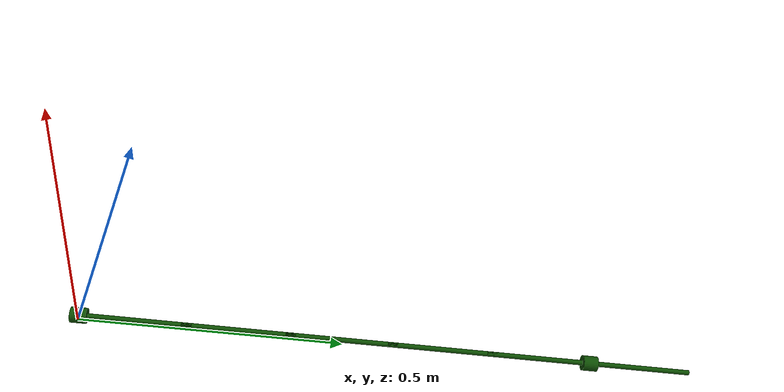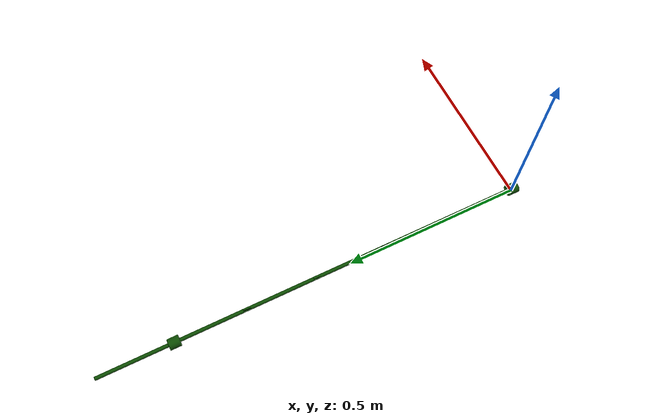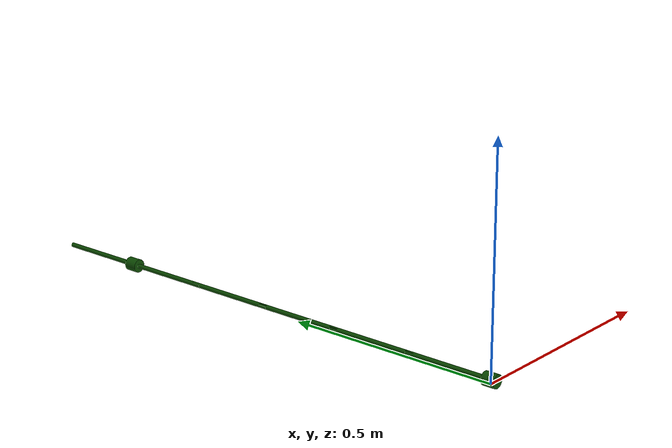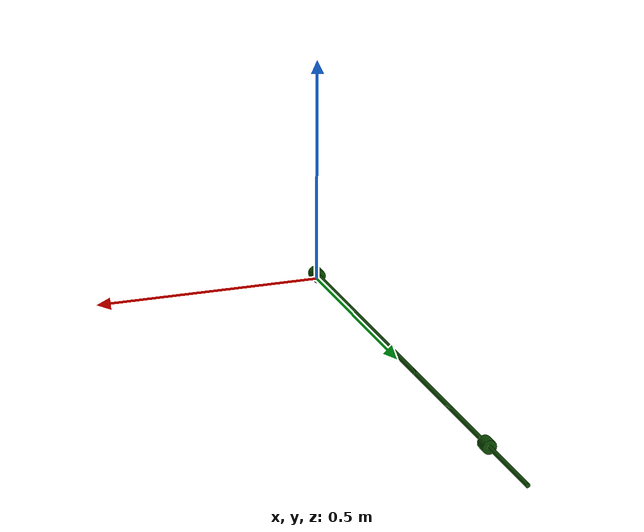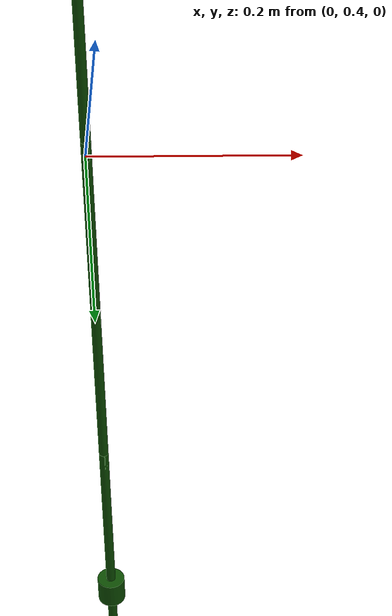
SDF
<?xml version='1.0'?>
<sdf version='1.6'>
  <model name="compliant_cord.sdf">

    <link name='l1'>
      <pose frame=''>0 0 0.01 -1.570796 0 0</pose>
      <collision name='collision'>
        <pose frame=''>0 0 0.1 0 0 0</pose>
        <geometry>
          <cylinder>
            <length>0.22</length>
            <radius>0.005</radius>
          </cylinder>
        </geometry>
        <surface>
          <friction>
            <ode>
              <mu>0.5</mu>
              <mu2>0.5</mu2>
            </ode>
          </friction>
        </surface>
      </collision>

      <visual name='visual'>
        <pose frame=''>0 0 0.1 0 0 0</pose>
        <geometry>
          <cylinder>
            <length>0.22</length>
            <radius>0.005</radius>
          </cylinder>
        </geometry>
        <material>
          <diffuse>0.05 0.3 0.01</diffuse>
        </material>
      </visual>
      <visual name='end_visual'>
        <pose frame=''>0 0 0 0 0 0</pose>
        <geometry>
          <cylinder>
            <length>0.03</length>
            <radius>0.015</radius>
          </cylinder>
        </geometry>
        <material>
          <diffuse>0.05 0.3 0.01</diffuse>
        </material>
      </visual>

      <inertial>
        <pose frame=''>0 0 0.1 0 0 0</pose>
        <mass>0.01</mass>
        <inertia>
          <ixx>4e-4</ixx>
          <ixy>0</ixy>
          <ixz>0</ixz>
          <iyy>4e-4</iyy>
          <iyz>0</iyz>
          <izz>1e-6</izz>
        </inertia>
      </inertial>
    </link>

    <joint name='j0' type='universal'>
      <parent>world</parent>
      <child>l1</child>
      <pose>0 0 0 0 0 0</pose>
      <axis>
        <xyz>0 1 0</xyz>
        <dynamics>
          <damping>0.005</damping>
          <spring_reference>0</spring_reference>
          <spring_stiffness>0.01</spring_stiffness>
        </dynamics>
      </axis>
      <axis2>
        <xyz>1 0 0</xyz>
        <dynamics>
          <damping>0.005</damping>
          <spring_reference>0</spring_reference>
          <spring_stiffness>0.01</spring_stiffness>
        </dynamics>
      </axis2>
    </joint>

    <link name='l2'>
      <pose frame=''>0 0.2 0.01 -1.570796 0 0</pose>
      <collision name='collision'>
        <pose frame=''>0 0 0.1 0 0 0</pose>
        <geometry>
          <cylinder>
            <length>0.22</length>
            <radius>0.005</radius>
          </cylinder>
        </geometry>
        <surface>
          <friction>
            <ode>
              <mu>0.5</mu>
              <mu2>0.5</mu2>
            </ode>
          </friction>
        </surface>
      </collision>

      <visual name='visual'>
        <pose frame=''>0 0 0.1 0 0 0</pose>
        <geometry>
          <cylinder>
            <length>0.22</length>
            <radius>0.005</radius>
          </cylinder>
        </geometry>
        <material>
          <diffuse>0.05 0.3 0.01</diffuse>
        </material>
      </visual>

      <inertial>
        <pose frame=''>0 0 0.1 0 0 0</pose>
        <mass>0.01</mass>
        <inertia>
          <ixx>4e-4</ixx>
          <ixy>0</ixy>
          <ixz>0</ixz>
          <iyy>4e-4</iyy>
          <iyz>0</iyz>
          <izz>1e-6</izz>
        </inertia>
      </inertial>
    </link>

    <joint name='j1' type='universal'>
      <parent>l1</parent>
      <child>l2</child>
      <pose>0 0 0 0 0 0</pose>
      <axis>
        <xyz>0 1 0</xyz>
        <dynamics>
          <damping>0.005</damping>
          <spring_reference>0</spring_reference>
          <spring_stiffness>0.01</spring_stiffness>
        </dynamics>
      </axis>
      <axis2>
        <xyz>1 0 0</xyz>
        <dynamics>
          <damping>0.005</damping>
          <spring_reference>0</spring_reference>
          <spring_stiffness>0.01</spring_stiffness>
        </dynamics>
      </axis2>
    </joint>

    <link name='l3'>
      <pose frame=''>0 0.4 0.01 -1.570796 0 0</pose>
      <collision name='collision'>
        <pose frame=''>0 0 0.1 0 0 0</pose>
        <geometry>
          <cylinder>
            <length>0.22</length>
            <radius>0.005</radius>
          </cylinder>
        </geometry>
        <surface>
          <friction>
            <ode>
              <mu>0.5</mu>
              <mu2>0.5</mu2>
            </ode>
          </friction>
        </surface>
      </collision>

      <visual name='visual'>
        <pose frame=''>0 0 0.1 0 0 0</pose>
        <geometry>
          <cylinder>
            <length>0.22</length>
            <radius>0.005</radius>
          </cylinder>
        </geometry>
        <material>
          <diffuse>0.05 0.3 0.01</diffuse>
        </material>
      </visual>

      <inertial>
        <pose frame=''>0 0 0.1 0 0 0</pose>
        <mass>0.01</mass>
        <inertia>
          <ixx>4e-4</ixx>
          <ixy>0</ixy>
          <ixz>0</ixz>
          <iyy>4e-4</iyy>
          <iyz>0</iyz>
          <izz>1e-6</izz>
        </inertia>
      </inertial>
    </link>

    <joint name='j2' type='universal'>
      <parent>l2</parent>
      <child>l3</child>
      <pose>0 0 0 0 0 0</pose>
      <axis>
        <xyz>0 1 0</xyz>
        <dynamics>
          <damping>0.005</damping>
          <spring_reference>0</spring_reference>
          <spring_stiffness>0.01</spring_stiffness>
        </dynamics>
      </axis>
      <axis2>
        <xyz>1 0 0</xyz>
        <dynamics>
          <damping>0.005</damping>
          <spring_reference>0</spring_reference>
          <spring_stiffness>0.01</spring_stiffness>
        </dynamics>
      </axis2>
    </joint>

    <link name='l4'>
      <pose frame=''>0 0.6 0.01 -1.570796 0 0</pose>
      <collision name='collision'>
        <pose frame=''>0 0 0.1 0 0 0</pose>
        <geometry>
          <cylinder>
            <length>0.22</length>
            <radius>0.005</radius>
          </cylinder>
        </geometry>
        <surface>
          <friction>
            <ode>
              <mu>0.5</mu>
              <mu2>0.5</mu2>
            </ode>
          </friction>
        </surface>
      </collision>

      <visual name='visual'>
        <pose frame=''>0 0 0.1 0 0 0</pose>
        <geometry>
          <cylinder>
            <length>0.22</length>
            <radius>0.005</radius>
          </cylinder>
        </geometry>
        <material>
          <diffuse>0.05 0.3 0.01</diffuse>
        </material>
      </visual>

      <inertial>
        <pose frame=''>0 0 0.1 0 0 0</pose>
        <mass>0.01</mass>
        <inertia>
          <ixx>4e-4</ixx>
          <ixy>0</ixy>
          <ixz>0</ixz>
          <iyy>4e-4</iyy>
          <iyz>0</iyz>
          <izz>1e-6</izz>
        </inertia>
      </inertial>
    </link>

    <joint name='j3' type='universal'>
      <parent>l3</parent>
      <child>l4</child>
      <pose>0 0 0 0 0 0</pose>
      <axis>
        <xyz>0 1 0</xyz>
        <dynamics>
          <damping>0.005</damping>
          <spring_reference>0</spring_reference>
          <spring_stiffness>0.01</spring_stiffness>
        </dynamics>
      </axis>
      <axis2>
        <xyz>1 0 0</xyz>
        <dynamics>
          <damping>0.005</damping>
          <spring_reference>0</spring_reference>
          <spring_stiffness>0.01</spring_stiffness>
        </dynamics>
      </axis2>
    </joint>

    <link name='l5'>
      <pose frame=''>0 0.8 0.01 -1.570796 0 0</pose>
      <collision name='collision'>
        <pose frame=''>0 0 0.1 0 0 0</pose>
        <geometry>
          <cylinder>
            <length>0.22</length>
            <radius>0.005</radius>
          </cylinder>
        </geometry>
        <surface>
          <friction>
            <ode>
              <mu>0.5</mu>
              <mu2>0.5</mu2>
            </ode>
          </friction>
        </surface>
      </collision>

      <visual name='visual'>
        <pose frame=''>0 0 0.1 0 0 0</pose>
        <geometry>
          <cylinder>
            <length>0.22</length>
            <radius>0.005</radius>
          </cylinder>
        </geometry>
        <material>
          <diffuse>0.05 0.3 0.01</diffuse>
        </material>
      </visual>

      <inertial>
        <pose frame=''>0 0 0.1 0 0 0</pose>
        <mass>0.01</mass>
        <inertia>
          <ixx>4e-4</ixx>
          <ixy>0</ixy>
          <ixz>0</ixz>
          <iyy>4e-4</iyy>
          <iyz>0</iyz>
          <izz>1e-6</izz>
        </inertia>
      </inertial>
    </link>

    <joint name='j4' type='universal'>
      <parent>l4</parent>
      <child>l5</child>
      <pose>0 0 0 0 0 0</pose>
      <axis>
        <xyz>0 1 0</xyz>
        <dynamics>
          <damping>0.005</damping>
          <spring_reference>0</spring_reference>
          <spring_stiffness>0.01</spring_stiffness>
        </dynamics>
      </axis>
      <axis2>
        <xyz>1 0 0</xyz>
        <dynamics>
          <damping>0.005</damping>
          <spring_reference>0</spring_reference>
          <spring_stiffness>0.01</spring_stiffness>
        </dynamics>
      </axis2>
    </joint>

    <link name='l6'>
      <pose frame=''>0 1.0 0.01 -1.570796 0 0</pose>
      <collision name='collision'>
        <pose frame=''>0 0 0.1 0 0 0</pose>
        <geometry>
          <cylinder>
            <length>0.22</length>
            <radius>0.005</radius>
          </cylinder>
        </geometry>
        <surface>
          <friction>
            <ode>
              <mu>0.5</mu>
              <mu2>0.5</mu2>
            </ode>
          </friction>
        </surface>
      </collision>

      <visual name='visual'>
        <pose frame=''>0 0 0.1 0 0 0</pose>
        <geometry>
          <cylinder>
            <length>0.22</length>
            <radius>0.005</radius>
          </cylinder>
        </geometry>
        <material>
          <diffuse>0.05 0.3 0.01</diffuse>
        </material>
      </visual>

      <inertial>
        <pose frame=''>0 0 0.1 0 0 0</pose>
        <mass>0.01</mass>
        <inertia>
          <ixx>4e-4</ixx>
          <ixy>0</ixy>
          <ixz>0</ixz>
          <iyy>4e-4</iyy>
          <iyz>0</iyz>
          <izz>1e-6</izz>
        </inertia>
      </inertial>
    </link>

    <joint name='j5' type='universal'>
      <parent>l5</parent>
      <child>l6</child>
      <pose>0 0 0 0 0 0</pose>
      <axis>
        <xyz>0 1 0</xyz>
        <dynamics>
          <damping>0.005</damping>
          <spring_reference>0</spring_reference>
          <spring_stiffness>0.01</spring_stiffness>
        </dynamics>
      </axis>
      <axis2>
        <xyz>1 0 0</xyz>
        <dynamics>
          <damping>0.005</damping>
          <spring_reference>0</spring_reference>
          <spring_stiffness>0.01</spring_stiffness>
        </dynamics>
      </axis2>
    </joint>

    <link name='l_end'>
      <pose frame=''>0 1.0 0.01 -1.570796 0 0</pose>
      <visual name='visual'>
        <pose frame=''>0 0 0 0 0 0</pose>
        <geometry>
          <cylinder>
            <length>0.03</length>
            <radius>0.015</radius>
          </cylinder>
        </geometry>
        <material>
          <diffuse>0.05 0.3 0.01</diffuse>
        </material>
      </visual>

      <inertial>
        <pose frame=''>0 0 0.1 0 0 0</pose>
        <mass>0.01</mass>
        <inertia>
          <ixx>1e-5</ixx>
          <ixy>0</ixy>
          <ixz>0</ixz>
          <iyy>1e-5</iyy>
          <iyz>0</iyz>
          <izz>1e-5</izz>
        </inertia>
      </inertial>
    </link>

    <joint name='j_end2' type='universal'>
      <parent>world</parent>
      <child>l_end</child>
      <pose>0 0 0 0 0 0</pose>
      <axis>
        <xyz>0 1 0</xyz>
        <dynamics>
          <damping>0.005</damping>
          <spring_reference>0</spring_reference>
          <spring_stiffness>0.01</spring_stiffness>
        </dynamics>
      </axis>
      <axis2>
        <xyz>1 0 0</xyz>
        <dynamics>
          <damping>0.005</damping>
          <spring_reference>0</spring_reference>
          <spring_stiffness>0.01</spring_stiffness>
        </dynamics>
      </axis2>
    </joint>

    <joint name='j_end1' type='prismatic'>
      <parent>l_end</parent>
      <child>l6</child>
      <pose>0 0 0 0 0 0</pose>
      <axis>
        <xyz>0 0 1</xyz>
        <dynamics>
          <damping>5.0</damping>
          <spring_reference>0</spring_reference>
          <spring_stiffness>200.0</spring_stiffness>
        </dynamics>
        <limit>
          <lower>-0.1</lower>
          <upper>0</upper>
        </limit>
      </axis>
    </joint>
  </model>
</sdf>
